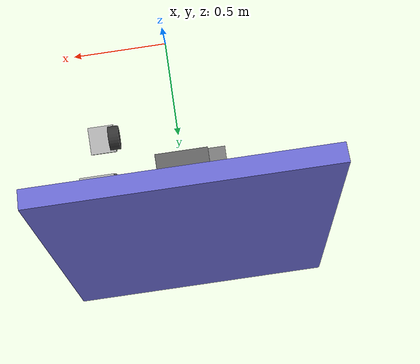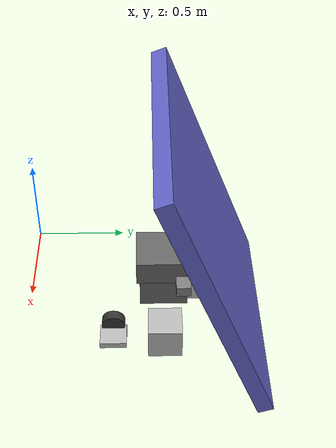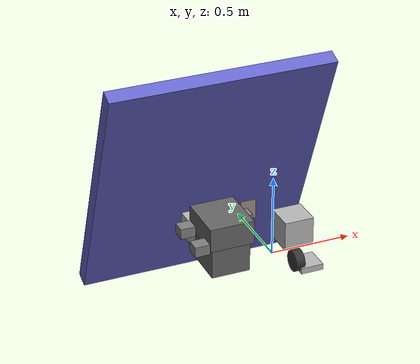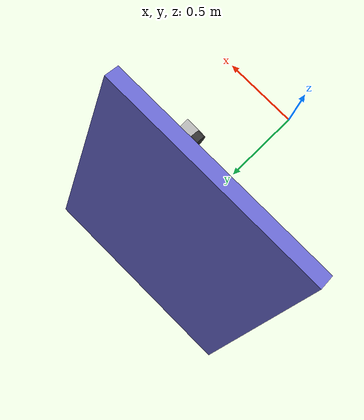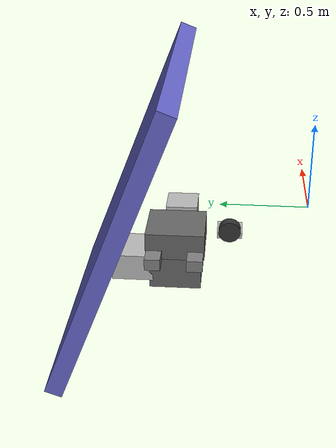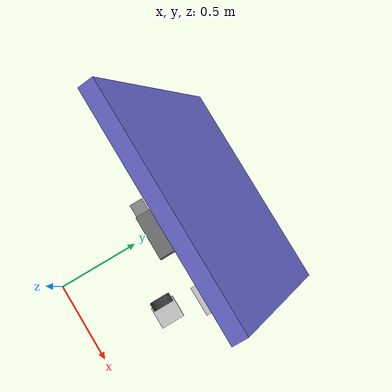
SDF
<sdf version="1.6">
 <world name="default">
  <scene><grid>false</grid><origin_visual>false</origin_visual></scene>
  <physics name="ode" type="ode">
   <ode><constraints><contact_max_correcting_vel>0</contact_max_correcting_vel></constraints></ode>
   <max_step_size>0.002</max_step_size>
   <real_time_update_rate>0</real_time_update_rate>
  </physics>
  <plugin name="stepping_plugin" filename="libstepping_plugin.so"/>
  <plugin name="collision_map_plugin" filename="libcollision_map_plugin.so"/>
  <plugin name="gazebo_ros_tf_plugin" filename="libgazebo_ros_tf_plugin.so">
   <model_names>table val</model_names>
  </plugin>
  <include><uri>model://sun</uri></include>
  <include><pose>0.35 1.15 -0.45 0 0 0</pose><uri>model://box2</uri></include>
  <include><pose>0.50 0.75 -0.45 0 0 0</pose><uri>model://car_alternator</uri></include>
  <include><pose>0.0 0.75 -0.45 0 0 0</pose><uri>model://car_engine2</uri></include>
  <include><pose>0.38 0.44 -0.45 0 0 0</pose><uri>model://car_pulley</uri></include>
  <include><pose>0 1 -0.45 0 0 0</pose><uri>model://car_coolant_tank</uri></include>
  <include><pose>0 1 0 -1.2 0 0</pose><uri>model://car_hood</uri></include>
 </world>
</sdf>

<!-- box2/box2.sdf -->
<sdf version="1.6">
    <model name="box2">
        <allow_auto_disable>true</allow_auto_disable>
        <link name="link_1">
            <pose>0 0 0.105 0 0 0 0</pose>
            <inertial>
                <pose>0 0 -0.04 0 0 0 0</pose>
                <inertia>
                    <ixx>0.03974999999999999</ixx>
                    <ixy>0</ixy>
                    <ixz>0</ixz>
                    <iyy>0.046833333333333324</iyy>
                    <iyz>0</iyz>
                    <izz>0.01308333333333333</izz>
                </inertia>
                <mass>10.0</mass>
            </inertial>
            <visual name="visual">
                <geometry>
                    <box>
                        <size>0.11 0.06 0.21</size>
                    </box>
                </geometry>
                <material>
                    <ambient>0.6 0.55 0.5 1.0</ambient>
                    <diffuse>0.6 0.55 0.5 1.0</diffuse>
                </material>
            </visual>
            <collision name="box_collision">
                <geometry>
                    <box>
                        <size>0.11 0.06 0.21</size>
                    </box>
                </geometry>
                <surface>
                    <friction>
                        <ode>
                            <mu>1.0</mu>
                            <mu2>1.0</mu2>
                        </ode>
                    </friction>
                    <contact>
                        <ode>
                            <kp>1e15</kp>
                            <kd>1e12</kd>
                        </ode>
                    </contact>
                </surface>
            </collision>
        </link>
    </model>
</sdf>

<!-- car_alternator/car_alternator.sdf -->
<sdf version="1.6">
    <model name="car_alternator">
        <allow_auto_disable>true</allow_auto_disable>
        <link name="link_1">
            <kinematic>true</kinematic>
            <pose>0 0 0.105 0 0 0 0</pose>
            <visual name="visual">
                <geometry>
                    <box>
                        <size>0.20 0.20 0.20</size>
                    </box>
                </geometry>
            </visual>
            <collision name="collision">
                <geometry>
                    <box>
                        <size>0.20 0.20 0.20</size>
                    </box>
                </geometry>
            </collision>
        </link>
    </model>
</sdf>

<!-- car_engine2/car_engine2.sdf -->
<sdf version="1.6">
    <model name="car_engine2">
        <allow_auto_disable>true</allow_auto_disable>
        <link name="body2">
            <kinematic>true</kinematic>
            <pose>0 0 0.06 0 0 0 0</pose>
            <visual name="visual">
                <geometry>
                    <box>
                        <size>0.26 0.30 0.21</size>
                    </box>
                </geometry>
                <material>
                    <ambient>0.4 0.4 0.4 1.0</ambient>
                    <diffuse>0.4 0.4 0.4 1.0</diffuse>
                </material>
            </visual>
            <collision name="collision">
                <geometry>
                    <box>
                        <size>0.26 0.30 0.21</size>
                    </box>
                </geometry>
            </collision>
        </link>
        <link name="body">
            <kinematic>true</kinematic>
            <pose>0 0 0.24 0 0 0 0</pose>
            <visual name="visual">
                <geometry>
                    <box>
                        <size>0.30 0.34 0.16</size>
                    </box>
                </geometry>
                <material>
                    <ambient>0.4 0.4 0.4 1.0</ambient>
                    <diffuse>0.4 0.4 0.4 1.0</diffuse>
                </material>
            </visual>
            <collision name="collision">
                <geometry>
                    <box>
                        <size>0.30 0.34 0.16</size>
                    </box>
                </geometry>
                <surface>
                    <friction>
                        <ode>
                            <mu>10.00</mu>
                            <mu2>10.00</mu2>
                        </ode>
                    </friction>
                    <contact>
                        <ode>
                            <kp>1e15</kp>
                            <kd>1e11</kd>
                        </ode>
                    </contact>
                </surface>
            </collision>
        </link>
        <link name="lift_tab1">
            <kinematic>true</kinematic>
            <pose>0.20 0.12 0.18 0 0 0 0</pose>
            <visual name="visual">
                <geometry>
                    <box>
                        <size>0.1 0.09 0.07</size>
                    </box>
                </geometry>
                <material>
                    <ambient>0.5 0.5 0.5 1.0</ambient>
                    <diffuse>0.5 0.5 0.5 1.0</diffuse>
                </material>
            </visual>
            <collision name="collision">
                <geometry>
                    <box>
                        <size>0.1 0.09 0.07</size>
                    </box>
                </geometry>
            </collision>
        </link>
        <link name="lift_tab3">
            <kinematic>true</kinematic>
            <pose>-0.20 0.12 0.18 0 0 0 0</pose>
            <visual name="visual">
                <geometry>
                    <box>
                        <size>0.1 0.09 0.07</size>
                    </box>
                </geometry>
                <material>
                    <ambient>0.5 0.5 0.5 1.0</ambient>
                    <diffuse>0.5 0.5 0.5 1.0</diffuse>
                </material>
            </visual>
            <collision name="collision">
                <geometry>
                    <box>
                        <size>0.1 0.09 0.07</size>
                    </box>
                </geometry>
            </collision>
        </link>
        <link name="lift_tab4">
            <kinematic>true</kinematic>
            <pose>-0.20 -0.12 0.18 0 0 0 0</pose>
            <visual name="visual">
                <geometry>
                    <box>
                        <size>0.1 0.09 0.07</size>
                    </box>
                </geometry>
                <material>
                    <ambient>0.5 0.5 0.5 1.0</ambient>
                    <diffuse>0.5 0.5 0.5 1.0</diffuse>
                </material>
            </visual>
            <collision name="collision">
                <geometry>
                    <box>
                        <size>0.1 0.09 0.07</size>
                    </box>
                </geometry>
            </collision>
        </link>
    </model>
</sdf>

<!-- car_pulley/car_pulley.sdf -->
<sdf version="1.6">
    <model name="car_pulley">
        <allow_auto_disable>true</allow_auto_disable>
        <link name="plate">
            <kinematic>true</kinematic>
            <pose>0.075 0 0.02 0 0 0</pose>
            <visual name="visual">
                <geometry>
                    <box>
                        <size>0.15 0.16 0.04</size>
                    </box>
                </geometry>
            </visual>
            <collision name="collision">
                <geometry>
                    <box>
                        <size>0.15 0.16 0.04</size>
                    </box>
                </geometry>
            </collision>
        </link>
        <link name="pulley">
            <kinematic>true</kinematic>
            <pose>0 0 0.06 0 1.570796 0</pose>
            <visual name="visual">
                <geometry>
                    <cylinder>
                        <radius>0.07</radius>
                        <length>0.06</length>
                    </cylinder>
                </geometry>
                <material>
                    <ambient>0.2 0.2 0.2 1.0</ambient>
                    <diffuse>0.2 0.2 0.2 1.0</diffuse>
                </material>
            </visual>
            <collision name="collision">
                <geometry>
                    <cylinder>
                        <radius>0.07</radius>
                        <length>0.06</length>
                    </cylinder>
                </geometry>
            </collision>
        </link>
    </model>
</sdf>

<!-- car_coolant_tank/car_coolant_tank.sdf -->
<sdf version="1.6">
    <model name="car_coolant_tank">
        <allow_auto_disable>true</allow_auto_disable>
        <link name="link_1">
            <kinematic>true</kinematic>
            <pose>0 0 0.08 0 0 0 0</pose>
            <visual name="visual">
                <geometry>
                    <box>
                        <size>0.26 0.24 0.16</size>
                    </box>
                </geometry>
            </visual>
            <collision name="box_collision">
                <geometry>
                    <box>
                        <size>0.26 0.24 0.16</size>
                    </box>
                </geometry>
            </collision>
        </link>
    </model>
</sdf>

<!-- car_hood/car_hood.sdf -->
<sdf version="1.6">
    <model name="car_hood">
        <allow_auto_disable>true</allow_auto_disable>
        <link name="link_1">
            <kinematic>true</kinematic>
            <pose>0 0 0.05 0 0 0 0</pose>
            <visual name="visual">
                <geometry>
                    <box>
                        <size>1.5 1.75 0.1</size>
                    </box>
                </geometry>
                <material>
                    <ambient>0.4 0.4 0.8 1.0</ambient>
                    <diffuse>0.4 0.4 0.8 1.0</diffuse>
                </material>
            </visual>
            <collision name="collision">
                <geometry>
                    <box>
                        <size>1.5 1.75 0.1</size>
                    </box>
                </geometry>
            </collision>
        </link>
    </model>
</sdf>
